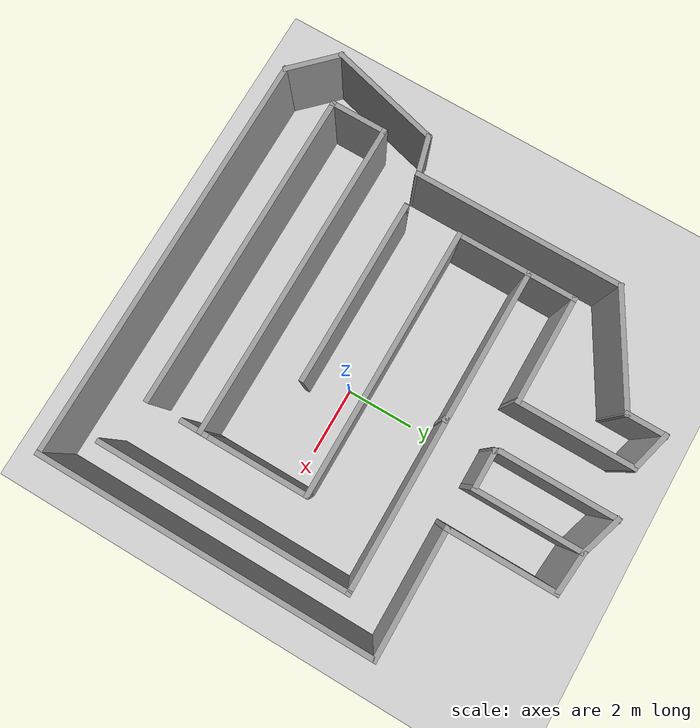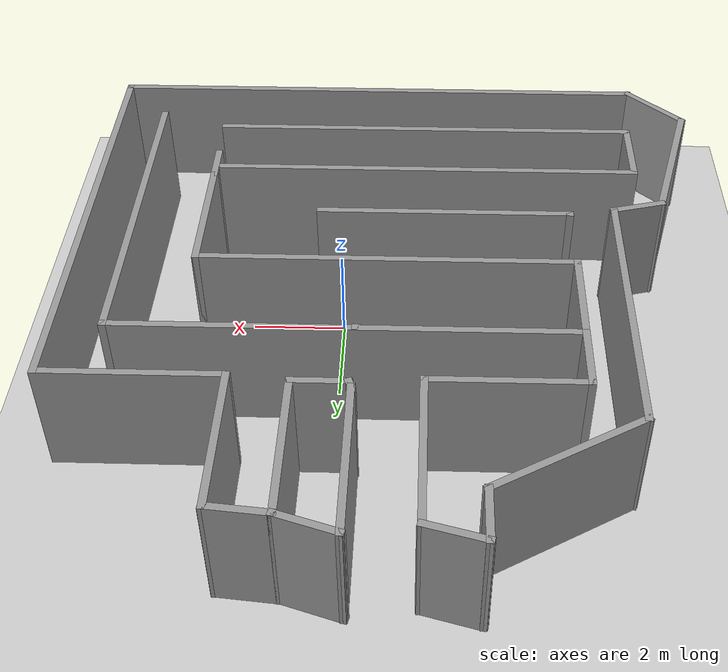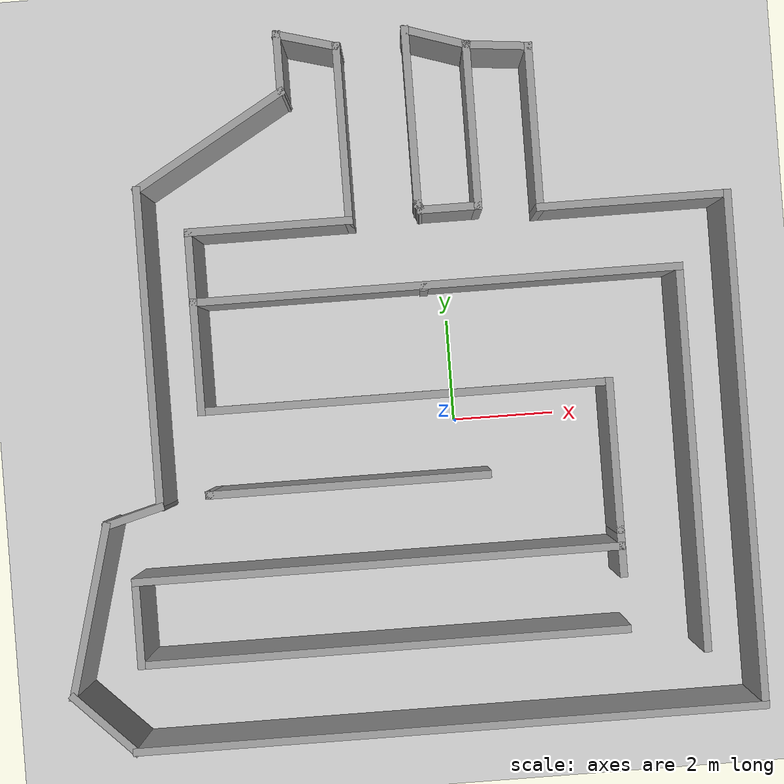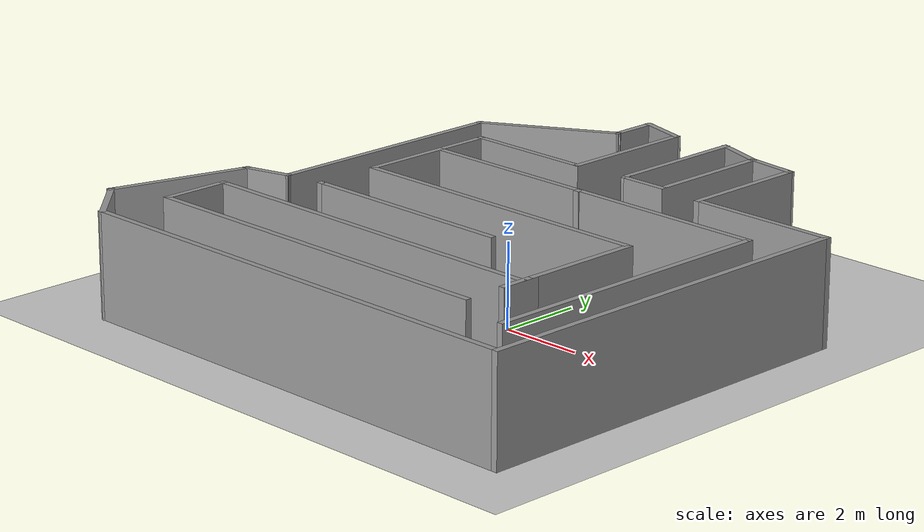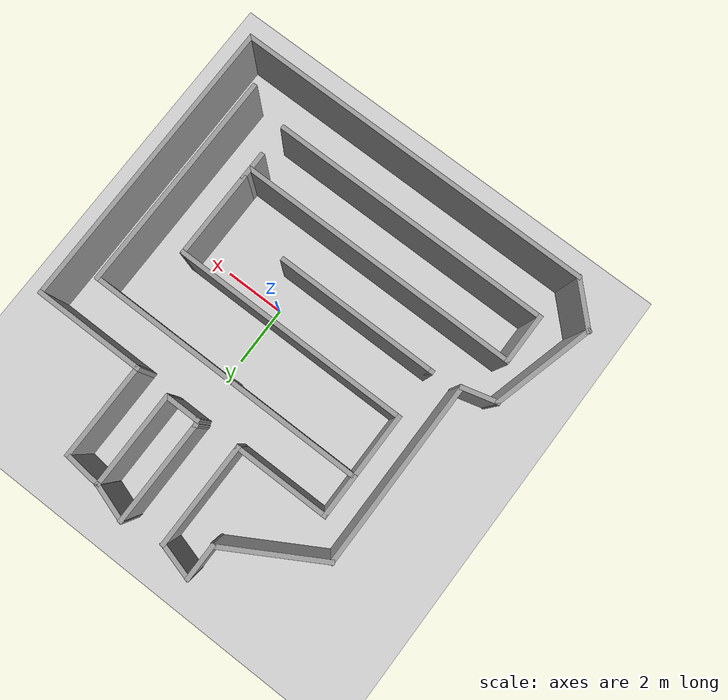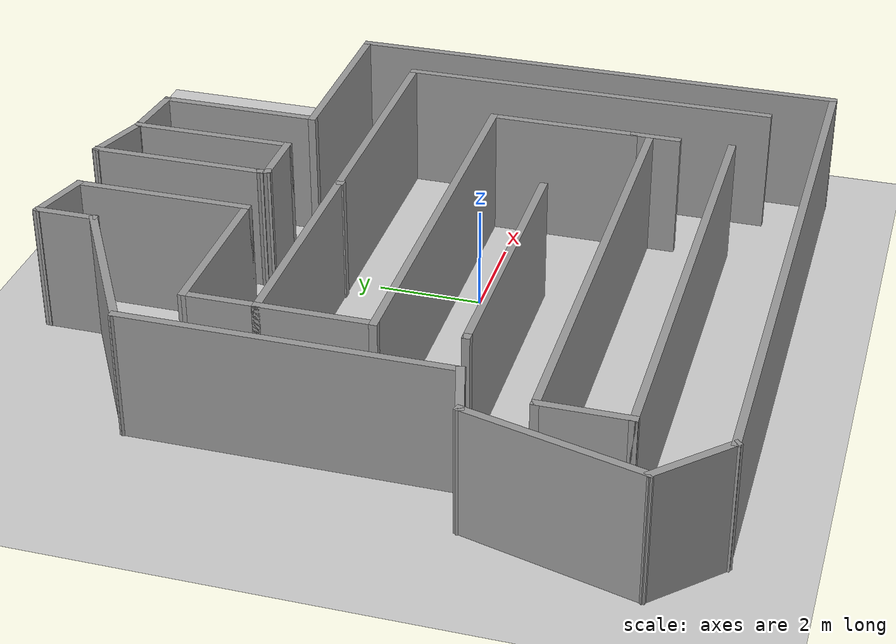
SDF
<sdf version="1.7">
 <world name="default">
  <light name="sun" type="directional">
   <pose>0 0 10 0 -0 0</pose>
   <diffuse>0.8 0.8 0.8 1</diffuse>
   <specular>0.2 0.2 0.2 1</specular>
   <attenuation>
    <range>1000</range>
    <constant>0.9</constant>
    <linear>0.01</linear>
    <quadratic>0.001</quadratic>
   </attenuation>
   <direction>-0.5 0.1 -0.9</direction>
   <spot><inner_angle>0</inner_angle><outer_angle>0</outer_angle><falloff>0</falloff></spot>
  </light>
  <model name="ground_plane">
   <static>1</static>
   <link name="link">
    <collision name="collision">
     <geometry><plane><normal>0 0 1</normal><size>100 100</size></plane></geometry>
     <surface><friction><ode><mu>100</mu><mu2>50</mu2></ode></friction></surface>
    </collision>
    <visual name="visual">
     <cast_shadows>0</cast_shadows>
     <geometry><plane><normal>0 0 1</normal><size>100 100</size></plane></geometry>
     <material>
      <script><uri>file://media/materials/scripts/gazebo.material</uri><name>Gazebo/Grey</name></script>
     </material>
    </visual>
   </link>
  </model>
  <gravity>0 0 -9.8</gravity>
  <magnetic_field>6e-06 2.3e-05 -4.2e-05</magnetic_field>
  <atmosphere type="adiabatic"/>
  <physics type="ode">
   <max_step_size>0.001</max_step_size>
   <real_time_factor>1</real_time_factor>
   <real_time_update_rate>1000</real_time_update_rate>
  </physics>
  <scene><ambient>0.4 0.4 0.4 1</ambient><background>0.7 0.7 0.7 1</background><shadows>1</shadows></scene>
  <audio><device>default</device></audio>
  <spherical_coordinates>
   <surface_model>EARTH_WGS84</surface_model>
   <latitude_deg>0</latitude_deg>
   <longitude_deg>0</longitude_deg>
   <elevation>0</elevation>
   <heading_deg>0</heading_deg>
  </spherical_coordinates>
  <model name="maze">
   <pose>-1.1211 0.883474 0 0 -0 0</pose>
   <link name="Wall_0">
    <collision name="Wall_0_Collision">
     <geometry><box><size>0.16 0.15 2.5</size></box></geometry>
     <pose>0 0 1.25 0 -0 0</pose>
    </collision>
    <visual name="Wall_0_Visual">
     <pose>0 0 1.25 0 -0 0</pose>
     <geometry><box><size>0.16 0.15 2.5</size></box></geometry>
     <material>
      <script><uri>file://media/materials/scripts/gazebo.material</uri><name>Gazebo/Grey</name></script>
      <ambient>1 1 1 1</ambient>
     </material>
     <meta><layer>0</layer></meta>
    </visual>
    <pose>-3.71086 -1.94647 0 0 -0 0</pose>
   </link>
   <link name="Wall_1">
    <collision name="Wall_1_Collision">
     <geometry><box><size>5.5 0.15 2.5</size></box></geometry>
     <pose>0 0 1.25 0 -0 0</pose>
    </collision>
    <visual name="Wall_1_Visual">
     <pose>0 0 1.25 0 -0 0</pose>
     <geometry><box><size>5.5 0.15 2.5</size></box></geometry>
     <material>
      <script><uri>file://media/materials/scripts/gazebo.material</uri><name>Gazebo/Grey</name></script>
      <ambient>1 1 1 1</ambient>
     </material>
     <meta><layer>0</layer></meta>
    </visual>
    <pose>-1.03086 -1.94647 0 0 -0 0</pose>
   </link>
   <link name="Wall_10">
    <collision name="Wall_10_Collision">
     <geometry><box><size>3 0.15 2.5</size></box></geometry>
     <pose>0 0 1.25 0 -0 0</pose>
    </collision>
    <visual name="Wall_10_Visual">
     <pose>0 0 1.25 0 -0 0</pose>
     <geometry><box><size>3 0.15 2.5</size></box></geometry>
     <material>
      <script><uri>file://media/materials/scripts/gazebo.material</uri><name>Gazebo/Grey</name></script>
      <ambient>1 1 1 1</ambient>
     </material>
     <meta><layer>0</layer></meta>
    </visual>
    <pose>4.10414 -1.76147 0 0 -0 -1.5708</pose>
   </link>
   <link name="Wall_12">
    <collision name="Wall_12_Collision">
     <geometry><box><size>1 0.15 2.5</size></box></geometry>
     <pose>0 0 1.25 0 -0 0</pose>
    </collision>
    <visual name="Wall_12_Visual">
     <pose>0 0 1.25 0 -0 0</pose>
     <geometry><box><size>1 0.15 2.5</size></box></geometry>
     <material>
      <script><uri>file://media/materials/scripts/gazebo.material</uri><name>Gazebo/Grey</name></script>
      <ambient>1 1 1 1</ambient>
     </material>
     <meta><layer>0</layer></meta>
    </visual>
    <pose>4.10414 -3.61147 0 0 -0 -1.5708</pose>
   </link>
   <link name="Wall_15">
    <collision name="Wall_15_Collision">
     <geometry><box><size>9.5 0.15 2.5</size></box></geometry>
     <pose>0 0 1.25 0 -0 0</pose>
    </collision>
    <visual name="Wall_15_Visual">
     <pose>0 0 1.25 0 -0 0</pose>
     <geometry><box><size>9.5 0.15 2.5</size></box></geometry>
     <material>
      <script><uri>file://media/materials/scripts/gazebo.material</uri><name>Gazebo/Grey</name></script>
      <ambient>1 1 1 1</ambient>
     </material>
     <meta><layer>0</layer></meta>
    </visual>
    <pose>-0.580864 -3.50647 0 0 -0 3.14159</pose>
   </link>
   <link name="Wall_16">
    <collision name="Wall_16_Collision">
     <geometry><box><size>1.75 0.15 2.5</size></box></geometry>
     <pose>0 0 1.25 0 -0 0</pose>
    </collision>
    <visual name="Wall_16_Visual">
     <pose>0 0 1.25 0 -0 0</pose>
     <geometry><box><size>1.75 0.15 2.5</size></box></geometry>
     <material>
      <script><uri>file://media/materials/scripts/gazebo.material</uri><name>Gazebo/Grey</name></script>
      <ambient>1 1 1 1</ambient>
     </material>
     <meta><layer>0</layer></meta>
    </visual>
    <pose>-5.25586 -4.30647 0 0 -0 -1.5708</pose>
   </link>
   <link name="Wall_17">
    <collision name="Wall_17_Collision">
     <geometry><box><size>9.5 0.15 2.5</size></box></geometry>
     <pose>0 0 1.25 0 -0 0</pose>
    </collision>
    <visual name="Wall_17_Visual">
     <pose>0 0 1.25 0 -0 0</pose>
     <geometry><box><size>9.5 0.15 2.5</size></box></geometry>
     <material>
      <script><uri>file://media/materials/scripts/gazebo.material</uri><name>Gazebo/Grey</name></script>
      <ambient>1 1 1 1</ambient>
     </material>
     <meta><layer>0</layer></meta>
    </visual>
    <pose>-0.580864 -5.10647 0 0 -0 0</pose>
   </link>
   <link name="Wall_20">
    <collision name="Wall_20_Collision">
     <geometry><box><size>2.25 0.15 2.5</size></box></geometry>
     <pose>0 0 1.25 0 -0 0</pose>
    </collision>
    <visual name="Wall_20_Visual">
     <pose>0 0 1.25 0 -0 0</pose>
     <geometry><box><size>2.25 0.15 2.5</size></box></geometry>
     <material>
      <script><uri>file://media/materials/scripts/gazebo.material</uri><name>Gazebo/Grey</name></script>
      <ambient>1 1 1 1</ambient>
     </material>
     <meta><layer>0</layer></meta>
    </visual>
    <pose>-3.74586 0.71353 0 0 -0 1.5708</pose>
   </link>
   <link name="Wall_21">
    <collision name="Wall_21_Collision">
     <geometry><box><size>9.5 0.15 2.5</size></box></geometry>
     <pose>0 0 1.25 0 -0 0</pose>
    </collision>
    <visual name="Wall_21_Visual">
     <pose>0 0 1.25 0 -0 0</pose>
     <geometry><box><size>9.5 0.15 2.5</size></box></geometry>
     <material>
      <script><uri>file://media/materials/scripts/gazebo.material</uri><name>Gazebo/Grey</name></script>
      <ambient>1 1 1 1</ambient>
     </material>
     <meta><layer>0</layer></meta>
    </visual>
    <pose>0.929136 1.76353 0 0 -0 0</pose>
   </link>
   <link name="Wall_22">
    <collision name="Wall_22_Collision">
     <geometry><box><size>7.5 0.15 2.5</size></box></geometry>
     <pose>0 0 1.25 0 -0 0</pose>
    </collision>
    <visual name="Wall_22_Visual">
     <pose>0 0 1.25 0 -0 0</pose>
     <geometry><box><size>7.5 0.15 2.5</size></box></geometry>
     <material>
      <script><uri>file://media/materials/scripts/gazebo.material</uri><name>Gazebo/Grey</name></script>
      <ambient>1 1 1 1</ambient>
     </material>
     <meta><layer>0</layer></meta>
    </visual>
    <pose>5.60414 -1.91147 0 0 -0 -1.5708</pose>
   </link>
   <link name="Wall_24">
    <collision name="Wall_24_Collision">
     <geometry><box><size>12.25 0.15 2.5</size></box></geometry>
     <pose>0 0 1.25 0 -0 0</pose>
    </collision>
    <visual name="Wall_24_Visual">
     <pose>0 0 1.25 0 -0 0</pose>
     <geometry><box><size>12.25 0.15 2.5</size></box></geometry>
     <material>
      <script><uri>file://media/materials/scripts/gazebo.material</uri><name>Gazebo/Grey</name></script>
      <ambient>1 1 1 1</ambient>
     </material>
     <meta><layer>0</layer></meta>
    </visual>
    <pose>0.581218 -6.75648 0 0 -0 0</pose>
   </link>
   <link name="Wall_25">
    <collision name="Wall_25_Collision">
     <geometry><box><size>10 0.15 2.5</size></box></geometry>
     <pose>0 0 1.25 0 -0 0</pose>
    </collision>
    <visual name="Wall_25_Visual">
     <pose>0 0 1.25 0 -0 0</pose>
     <geometry><box><size>10 0.15 2.5</size></box></geometry>
     <material>
      <script><uri>file://media/materials/scripts/gazebo.material</uri><name>Gazebo/Grey</name></script>
      <ambient>1 1 1 1</ambient>
     </material>
     <meta><layer>0</layer></meta>
    </visual>
    <pose>6.63122 -1.83149 0 0 -0 1.5708</pose>
   </link>
   <link name="Wall_26">
    <collision name="Wall_26_Collision">
     <geometry><box><size>3.75 0.15 2.5</size></box></geometry>
     <pose>0 0 1.25 0 -0 0</pose>
    </collision>
    <visual name="Wall_26_Visual">
     <pose>0 0 1.25 0 -0 0</pose>
     <geometry><box><size>3.75 0.15 2.5</size></box></geometry>
     <material>
      <script><uri>file://media/materials/scripts/gazebo.material</uri><name>Gazebo/Grey</name></script>
      <ambient>1 1 1 1</ambient>
     </material>
     <meta><layer>0</layer></meta>
    </visual>
    <pose>4.83122 3.09352 0 0 -0 3.14159</pose>
   </link>
   <link name="Wall_27">
    <collision name="Wall_27_Collision">
     <geometry><box><size>3.25 0.15 2.5</size></box></geometry>
     <pose>0 0 1.25 0 -0 0</pose>
    </collision>
    <visual name="Wall_27_Visual">
     <pose>0 0 1.25 0 -0 0</pose>
     <geometry><box><size>3.25 0.15 2.5</size></box></geometry>
     <material>
      <script><uri>file://media/materials/scripts/gazebo.material</uri><name>Gazebo/Grey</name></script>
      <ambient>1 1 1 1</ambient>
     </material>
     <meta><layer>0</layer></meta>
    </visual>
    <pose>3.03122 4.64351 0 0 -0 1.5708</pose>
   </link>
   <link name="Wall_29">
    <collision name="Wall_29_Collision">
     <geometry><box><size>1.5 0.15 2.5</size></box></geometry>
     <pose>0 0 1.25 0 -0 0</pose>
    </collision>
    <visual name="Wall_29_Visual">
     <pose>0 0 1.25 0 -0 0</pose>
     <geometry><box><size>1.5 0.15 2.5</size></box></geometry>
     <material>
      <script><uri>file://media/materials/scripts/gazebo.material</uri><name>Gazebo/Grey</name></script>
      <ambient>1 1 1 1</ambient>
     </material>
     <meta><layer>0</layer></meta>
    </visual>
    <pose>-3.74586 2.43853 0 0 -0 1.5708</pose>
   </link>
   <link name="Wall_30">
    <collision name="Wall_30_Collision">
     <geometry><box><size>3.25 0.15 2.5</size></box></geometry>
     <pose>0 0 1.25 0 -0 0</pose>
    </collision>
    <visual name="Wall_30_Visual">
     <pose>0 0 1.25 0 -0 0</pose>
     <geometry><box><size>3.25 0.15 2.5</size></box></geometry>
     <material>
      <script><uri>file://media/materials/scripts/gazebo.material</uri><name>Gazebo/Grey</name></script>
      <ambient>1 1 1 1</ambient>
     </material>
     <meta><layer>0</layer></meta>
    </visual>
    <pose>-2.19586 3.11353 0 0 -0 0</pose>
   </link>
   <link name="Wall_32">
    <collision name="Wall_32_Collision">
     <geometry><box><size>0.16 0.15 2.5</size></box></geometry>
     <pose>0 0 1.25 0 -0 0</pose>
    </collision>
    <visual name="Wall_32_Visual">
     <pose>0 0 1.25 0 -0 0</pose>
     <geometry><box><size>0.16 0.15 2.5</size></box></geometry>
     <material>
      <script><uri>file://media/materials/scripts/gazebo.material</uri><name>Gazebo/Grey</name></script>
      <ambient>1 1 1 1</ambient>
     </material>
     <meta><layer>0</layer></meta>
    </visual>
    <pose>0.689006 1.73436 0 0 -0 0</pose>
   </link>
   <link name="Wall_35">
    <collision name="Wall_35_Collision">
     <geometry><box><size>1.25 0.15 2.5</size></box></geometry>
     <pose>0 0 1.25 0 -0 0</pose>
    </collision>
    <visual name="Wall_35_Visual">
     <pose>0 0 1.25 0 -0 0</pose>
     <geometry><box><size>1.25 0.15 2.5</size></box></geometry>
     <material>
      <script><uri>file://media/materials/scripts/gazebo.material</uri><name>Gazebo/Grey</name></script>
      <ambient>1 1 1 1</ambient>
     </material>
     <meta><layer>0</layer></meta>
    </visual>
    <pose>1.29553 3.21103 0 0 -0 0</pose>
   </link>
   <link name="Wall_36">
    <collision name="Wall_36_Collision">
     <geometry><box><size>3.25 0.15 2.5</size></box></geometry>
     <pose>0 0 1.25 0 -0 0</pose>
    </collision>
    <visual name="Wall_36_Visual">
     <pose>0 0 1.25 0 -0 0</pose>
     <geometry><box><size>3.25 0.15 2.5</size></box></geometry>
     <material>
      <script><uri>file://media/materials/scripts/gazebo.material</uri><name>Gazebo/Grey</name></script>
      <ambient>1 1 1 1</ambient>
     </material>
     <meta><layer>0</layer></meta>
    </visual>
    <pose>1.84553 4.76103 0 0 -0 1.5708</pose>
   </link>
   <link name="Wall_38">
    <collision name="Wall_38_Collision">
     <geometry><box><size>3.5 0.15 2.5</size></box></geometry>
     <pose>0 0 1.25 0 -0 0</pose>
    </collision>
    <visual name="Wall_38_Visual">
     <pose>0 0 1.25 0 -0 0</pose>
     <geometry><box><size>3.5 0.15 2.5</size></box></geometry>
     <material>
      <script><uri>file://media/materials/scripts/gazebo.material</uri><name>Gazebo/Grey</name></script>
      <ambient>1 1 1 1</ambient>
     </material>
     <meta><layer>0</layer></meta>
    </visual>
    <pose>-0.645864 4.78853 0 0 -0 1.5708</pose>
   </link>
   <link name="Wall_40">
    <collision name="Wall_40_Collision">
     <geometry><box><size>0.283409 0.15 2.5</size></box></geometry>
     <pose>0 0 1.25 0 -0 0</pose>
    </collision>
    <visual name="Wall_40_Visual">
     <pose>0 0 1.25 0 -0 0</pose>
     <geometry><box><size>0.283409 0.15 2.5</size></box></geometry>
     <material>
      <script><uri>file://media/materials/scripts/gazebo.material</uri><name>Gazebo/Grey</name></script>
      <ambient>1 1 1 1</ambient>
     </material>
     <meta><layer>0</layer></meta>
    </visual>
    <pose>0.719769 3.27256 0 0 -0 1.96735</pose>
   </link>
   <link name="Wall_41">
    <collision name="Wall_41_Collision">
     <geometry><box><size>3.5 0.15 2.5</size></box></geometry>
     <pose>0 0 1.25 0 -0 0</pose>
    </collision>
    <visual name="Wall_41_Visual">
     <pose>0 0 1.25 0 -0 0</pose>
     <geometry><box><size>3.5 0.15 2.5</size></box></geometry>
     <material>
      <script><uri>file://media/materials/scripts/gazebo.material</uri><name>Gazebo/Grey</name></script>
      <ambient>1 1 1 1</ambient>
     </material>
     <meta><layer>0</layer></meta>
    </visual>
    <pose>0.694006 5.00909 0 0 -0 1.5708</pose>
   </link>
   <link name="Wall_43">
    <collision name="Wall_43_Collision">
     <geometry><box><size>1.75 0.15 2.5</size></box></geometry>
     <pose>0 0 1.25 0 -0 0</pose>
    </collision>
    <visual name="Wall_43_Visual">
     <pose>0 0 1.25 0 -0 0</pose>
     <geometry><box><size>1.75 0.15 2.5</size></box></geometry>
     <material>
      <script><uri>file://media/materials/scripts/gazebo.material</uri><name>Gazebo/Grey</name></script>
      <ambient>1 1 1 1</ambient>
     </material>
     <meta><layer>0</layer></meta>
    </visual>
    <pose>-6.03447 -6.1908 0 0 -0 2.35619</pose>
   </link>
   <link name="Wall_44">
    <collision name="Wall_44_Collision">
     <geometry><box><size>3.5 0.15 2.5</size></box></geometry>
     <pose>0 0 1.25 0 -0 0</pose>
    </collision>
    <visual name="Wall_44_Visual">
     <pose>0 0 1.25 0 -0 0</pose>
     <geometry><box><size>3.5 0.15 2.5</size></box></geometry>
     <material>
      <script><uri>file://media/materials/scripts/gazebo.material</uri><name>Gazebo/Grey</name></script>
      <ambient>1 1 1 1</ambient>
     </material>
     <meta><layer>0</layer></meta>
    </visual>
    <pose>-6.16663 -4.00719 0 0 -0 1.309</pose>
   </link>
   <link name="Wall_45">
    <collision name="Wall_45_Collision">
     <geometry><box><size>1.25 0.15 2.5</size></box></geometry>
     <pose>0 0 1.25 0 -0 0</pose>
    </collision>
    <visual name="Wall_45_Visual">
     <pose>0 0 1.25 0 -0 0</pose>
     <geometry><box><size>1.25 0.15 2.5</size></box></geometry>
     <material>
      <script><uri>file://media/materials/scripts/gazebo.material</uri><name>Gazebo/Grey</name></script>
      <ambient>1 1 1 1</ambient>
     </material>
     <meta><layer>0</layer></meta>
    </visual>
    <pose>-5.20185 -2.24691 0 0 -0 0.261799</pose>
   </link>
   <link name="Wall_46">
    <collision name="Wall_46_Collision">
     <geometry><box><size>6.25 0.15 2.5</size></box></geometry>
     <pose>0 0 1.25 0 -0 0</pose>
    </collision>
    <visual name="Wall_46_Visual">
     <pose>0 0 1.25 0 -0 0</pose>
     <geometry><box><size>6.25 0.15 2.5</size></box></geometry>
     <material>
      <script><uri>file://media/materials/scripts/gazebo.material</uri><name>Gazebo/Grey</name></script>
      <ambient>1 1 1 1</ambient>
     </material>
     <meta><layer>0</layer></meta>
    </visual>
    <pose>-4.67059 0.945439 0 0 -0 1.5708</pose>
   </link>
   <link name="Wall_47">
    <collision name="Wall_47_Collision">
     <geometry><box><size>3.5 0.15 2.5</size></box></geometry>
     <pose>0 0 1.25 0 -0 0</pose>
    </collision>
    <visual name="Wall_47_Visual">
     <pose>0 0 1.25 0 -0 0</pose>
     <geometry><box><size>3.5 0.15 2.5</size></box></geometry>
     <material>
      <script><uri>file://media/materials/scripts/gazebo.material</uri><name>Gazebo/Grey</name></script>
      <ambient>1 1 1 1</ambient>
     </material>
     <meta><layer>0</layer></meta>
    </visual>
    <pose>-3.22 4.83294 0 0 -0 0.523599</pose>
   </link>
   <link name="Wall_48">
    <collision name="Wall_48_Collision">
     <geometry><box><size>1.25 0.15 2.5</size></box></geometry>
     <pose>0 0 1.25 0 -0 0</pose>
    </collision>
    <visual name="Wall_48_Visual">
     <pose>0 0 1.25 0 -0 0</pose>
     <geometry><box><size>1.25 0.15 2.5</size></box></geometry>
     <material>
      <script><uri>file://media/materials/scripts/gazebo.material</uri><name>Gazebo/Grey</name></script>
      <ambient>1 1 1 1</ambient>
     </material>
     <meta><layer>0</layer></meta>
    </visual>
    <pose>-1.7694 6.22044 0 0 -0 1.5708</pose>
   </link>
   <link name="Wall_49">
    <collision name="Wall_49_Collision">
     <geometry><box><size>1.31471 0.15 2.5</size></box></geometry>
     <pose>0 0 1.25 0 -0 0</pose>
    </collision>
    <visual name="Wall_49_Visual">
     <pose>0 0 1.25 0 -0 0</pose>
     <geometry><box><size>1.31471 0.15 2.5</size></box></geometry>
     <material>
      <script><uri>file://media/materials/scripts/gazebo.material</uri><name>Gazebo/Grey</name></script>
      <ambient>1 1 1 1</ambient>
     </material>
     <meta><layer>0</layer></meta>
    </visual>
    <pose>-1.20764 6.61698 0 0 -0 -0.266657</pose>
   </link>
   <link name="Wall_5">
    <collision name="Wall_5_Collision">
     <geometry><box><size>8 0.15 2.5</size></box></geometry>
     <pose>0 0 1.25 0 -0 0</pose>
    </collision>
    <visual name="Wall_5_Visual">
     <pose>0 0 1.25 0 -0 0</pose>
     <geometry><box><size>8 0.15 2.5</size></box></geometry>
     <material>
      <script><uri>file://media/materials/scripts/gazebo.material</uri><name>Gazebo/Grey</name></script>
      <ambient>1 1 1 1</ambient>
     </material>
     <meta><layer>0</layer></meta>
    </visual>
    <pose>0.179136 -0.33647 0 0 -0 0</pose>
   </link>
   <link name="Wall_51">
    <collision name="Wall_51_Collision">
     <geometry><box><size>1.36045 0.15 2.5</size></box></geometry>
     <pose>0 0 1.25 0 -0 0</pose>
    </collision>
    <visual name="Wall_51_Visual">
     <pose>0 0 1.25 0 -0 0</pose>
     <geometry><box><size>1.36045 0.15 2.5</size></box></geometry>
     <material>
      <script><uri>file://media/materials/scripts/gazebo.material</uri><name>Gazebo/Grey</name></script>
      <ambient>1 1 1 1</ambient>
     </material>
     <meta><layer>0</layer></meta>
    </visual>
    <pose>1.26977 6.49756 0 0 -0 -0.313296</pose>
   </link>
   <link name="Wall_53">
    <collision name="Wall_53_Collision">
     <geometry><box><size>1.34149 0.15 2.5</size></box></geometry>
     <pose>0 0 1.25 0 -0 0</pose>
    </collision>
    <visual name="Wall_53_Visual">
     <pose>0 0 1.25 0 -0 0</pose>
     <geometry><box><size>1.34149 0.15 2.5</size></box></geometry>
     <material>
      <script><uri>file://media/materials/scripts/gazebo.material</uri><name>Gazebo/Grey</name></script>
      <ambient>1 1 1 1</ambient>
     </material>
     <meta><layer>0</layer></meta>
    </visual>
    <pose>2.43838 6.25227 0 0 -0 3.0428</pose>
   </link>
   <link name="Wall_54">
    <collision name="Wall_54_Collision">
     <geometry><box><size>0.15 0.15 2.5</size></box></geometry>
     <pose>0 0 1.25 0 -0 0</pose>
    </collision>
    <visual name="Wall_54_Visual">
     <pose>0 0 1.25 0 -0 0</pose>
     <geometry><box><size>0.15 0.15 2.5</size></box></geometry>
     <material>
      <script><uri>file://media/materials/scripts/gazebo.material</uri><name>Gazebo/Grey</name></script>
      <ambient>1 1 1 1</ambient>
     </material>
     <meta><layer>0</layer></meta>
    </visual>
    <pose>1.84553 6.31103 0 0 -0 0</pose>
   </link>
   <static>1</static>
  </model>
 </world>
</sdf>
